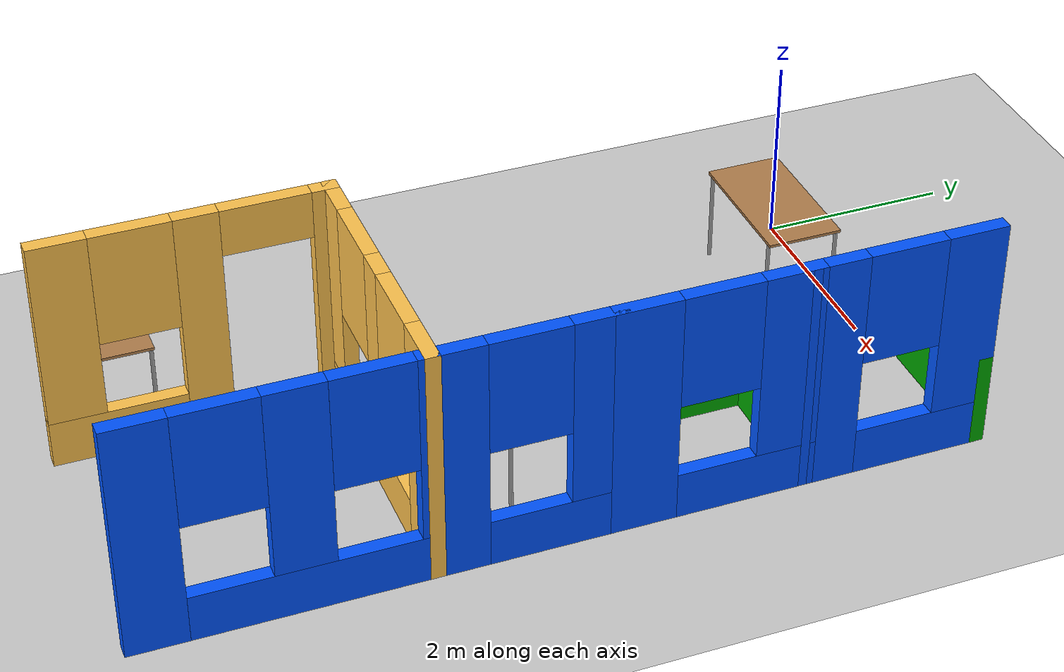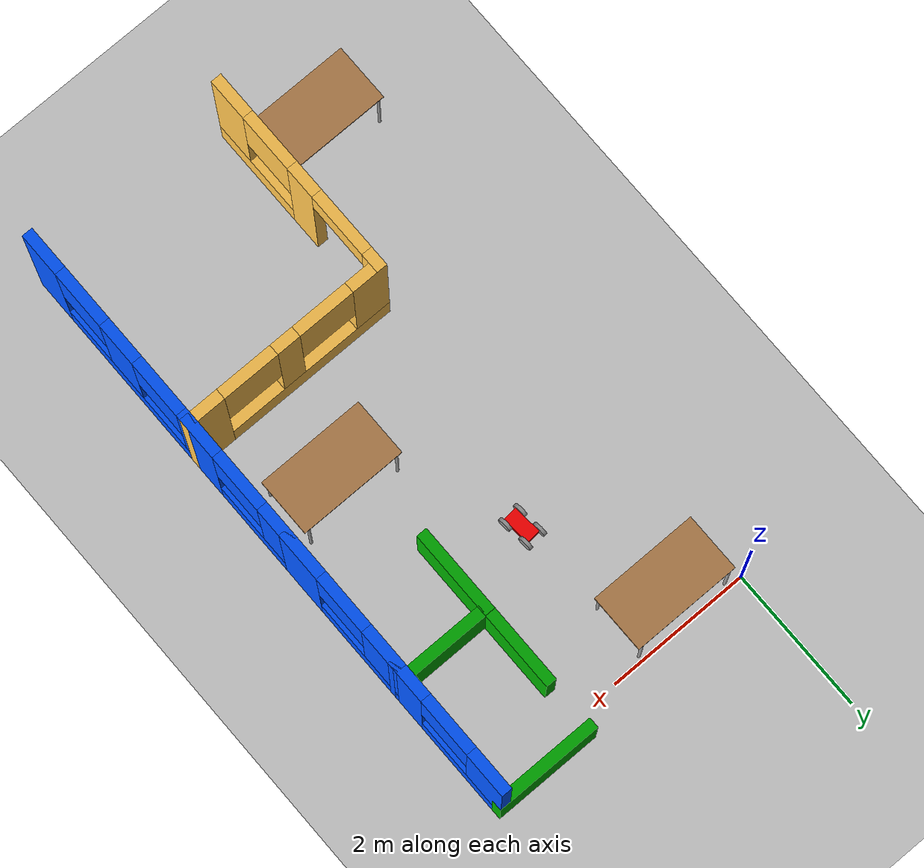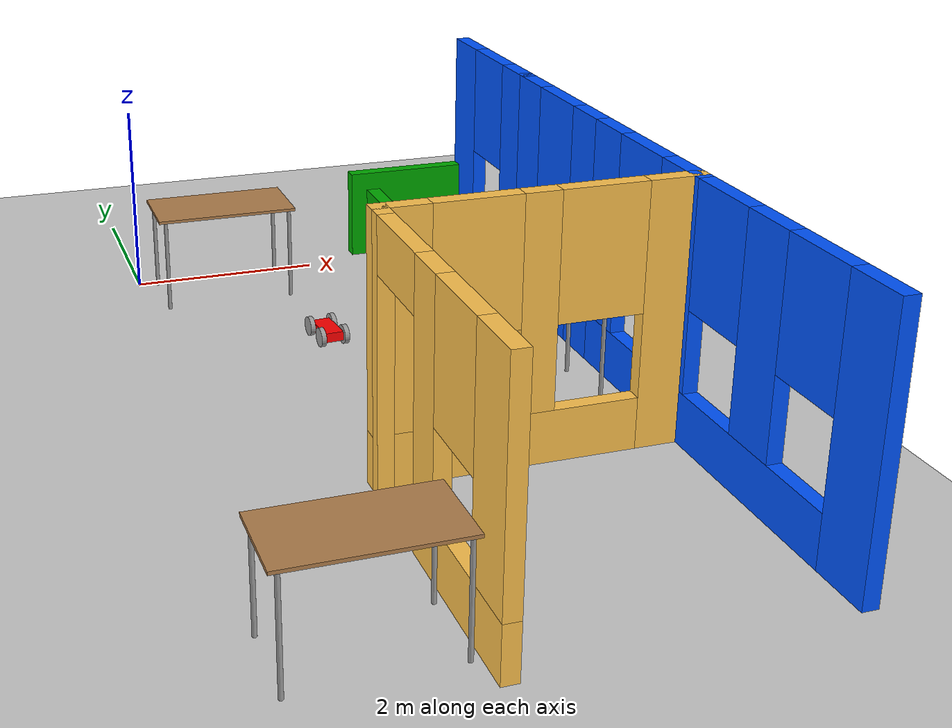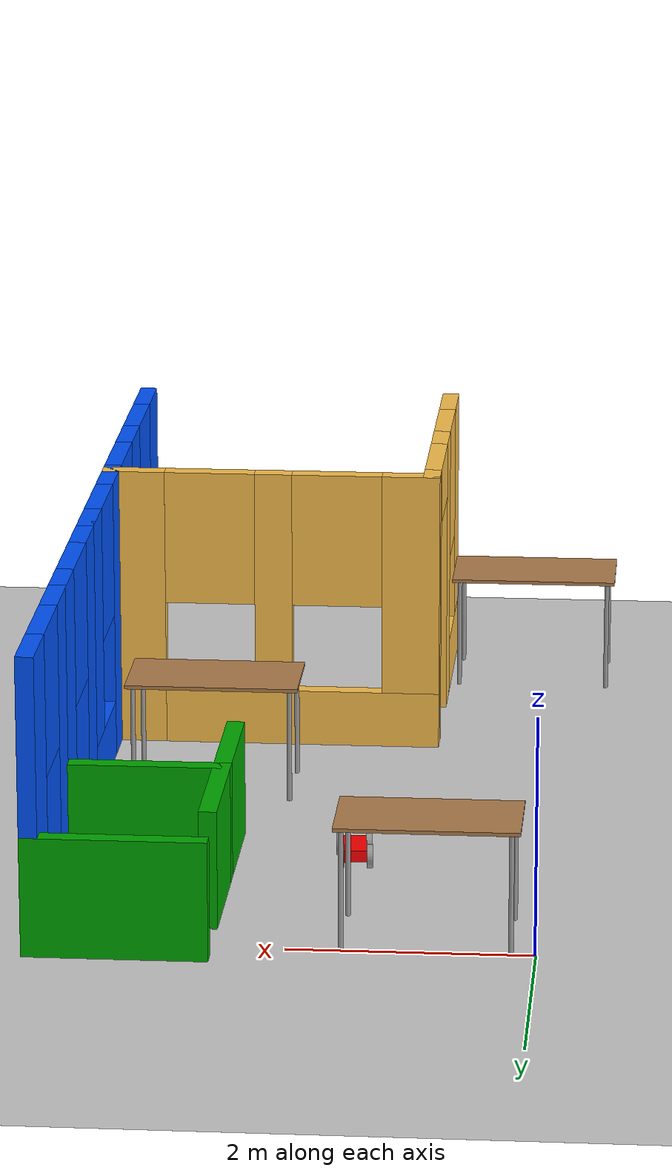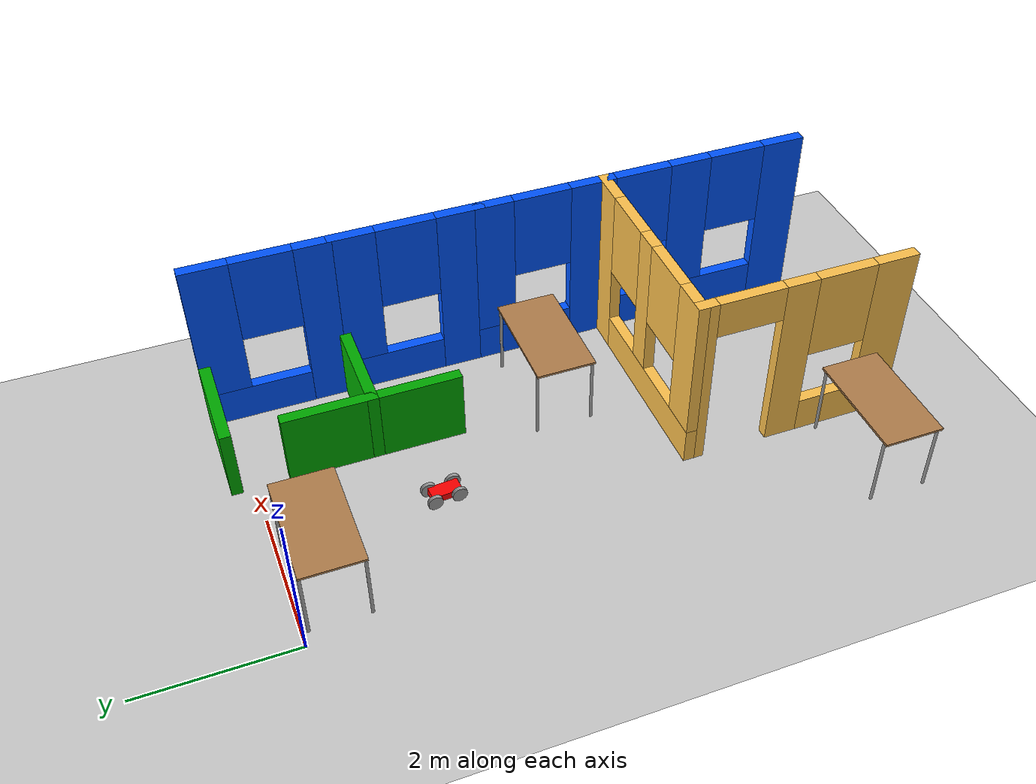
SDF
<sdf version="1.6">
 <world name="default">
  <model name="ground_plane">
   <static>1</static>
   <link name="link">
    <collision name="collision">
     <geometry><plane><normal>0 0 1</normal><size>100 100</size></plane></geometry>
     <surface><friction><ode><mu>100</mu><mu2>50</mu2></ode></friction></surface>
    </collision>
    <visual name="visual">
     <cast_shadows>0</cast_shadows>
     <geometry><plane><normal>0 0 1</normal><size>100 100</size></plane></geometry>
     <material>
      <script><uri>file://media/materials/scripts/gazebo.material</uri><name>Gazebo/Grey</name></script>
     </material>
    </visual>
   </link>
  </model>
  <model name="AMG">
   <pose>-3.41412 2.5474 0 0 -0 0</pose>
   <link name="Wall_10">
    <collision name="Wall_10_Collision">
     <geometry><box><size>1.5 0.15 1</size></box></geometry>
     <pose>0 0 0.5 0 -0 0</pose>
    </collision>
    <visual name="Wall_10_Visual">
     <pose>0 0 0.5 0 -0 0</pose>
     <geometry><box><size>1.5 0.15 1</size></box></geometry>
     <material>
      <script><uri>file://media/materials/scripts/gazebo.material</uri><name>Gazebo/Grey</name></script>
      <ambient>0 0.666667 0 1</ambient>
     </material>
     <meta><layer>0</layer></meta>
    </visual>
    <pose>6.75014 -4.14841 0 0 -0 3.14159</pose>
   </link>
   <link name="Wall_2">
    <pose>7.42485 -9.27379 0 0 -0 1.5708</pose>
    <visual name="Wall_2_Visual_0">
     <pose>-1.19989 0 1.25 0 -0 0</pose>
     <geometry><box><size>0.600224 0.15 2.5</size></box></geometry>
     <material>
      <script><uri>file://media/materials/scripts/gazebo.material</uri><name>Gazebo/Grey</name></script>
      <ambient>0 0.333333 1 1</ambient>
     </material>
     <meta><layer>0</layer></meta>
    </visual>
    <collision name="Wall_2_Collision_0">
     <geometry><box><size>0.600224 0.15 2.5</size></box></geometry>
     <pose>-1.19989 0 1.25 0 -0 0</pose>
    </collision>
    <visual name="Wall_2_Visual_1">
     <pose>0.300112 0 0.25 0 -0 0</pose>
     <geometry><box><size>2.39978 0.15 0.5</size></box></geometry>
     <material>
      <script><uri>file://media/materials/scripts/gazebo.material</uri><name>Gazebo/Grey</name></script>
      <ambient>0 0.333333 1 1</ambient>
     </material>
     <meta><layer>0</layer></meta>
    </visual>
    <collision name="Wall_2_Collision_1">
     <geometry><box><size>2.39978 0.15 0.5</size></box></geometry>
     <pose>0.300112 0 0.25 0 -0 0</pose>
    </collision>
    <visual name="Wall_2_Visual_2">
     <pose>0.194142 0 1.5 0 -0 0</pose>
     <geometry><box><size>0.587836 0.15 2</size></box></geometry>
     <material>
      <script><uri>file://media/materials/scripts/gazebo.material</uri><name>Gazebo/Grey</name></script>
      <ambient>0 0.333333 1 1</ambient>
     </material>
     <meta><layer>0</layer></meta>
    </visual>
    <collision name="Wall_2_Collision_2">
     <geometry><box><size>0.587836 0.15 2</size></box></geometry>
     <pose>0.194142 0 1.5 0 -0 0</pose>
    </collision>
    <visual name="Wall_2_Visual_3">
     <pose>1.39403 0 1.5 0 -0 0</pose>
     <geometry><box><size>0.211939 0.15 2</size></box></geometry>
     <material>
      <script><uri>file://media/materials/scripts/gazebo.material</uri><name>Gazebo/Grey</name></script>
      <ambient>0 0.333333 1 1</ambient>
     </material>
     <meta><layer>0</layer></meta>
    </visual>
    <collision name="Wall_2_Collision_3">
     <geometry><box><size>0.211939 0.15 2</size></box></geometry>
     <pose>1.39403 0 1.5 0 -0 0</pose>
    </collision>
    <visual name="Wall_2_Visual_4">
     <pose>-0.499776 0 1.9 0 -0 0</pose>
     <geometry><box><size>0.8 0.15 1.2</size></box></geometry>
     <material>
      <script><uri>file://media/materials/scripts/gazebo.material</uri><name>Gazebo/Grey</name></script>
      <ambient>0 0.333333 1 1</ambient>
     </material>
     <meta><layer>0</layer></meta>
    </visual>
    <collision name="Wall_2_Collision_4">
     <geometry><box><size>0.8 0.15 1.2</size></box></geometry>
     <pose>-0.499776 0 1.9 0 -0 0</pose>
    </collision>
    <visual name="Wall_2_Visual_5">
     <pose>0.888061 0 1.9 0 -0 0</pose>
     <geometry><box><size>0.8 0.15 1.2</size></box></geometry>
     <material>
      <script><uri>file://media/materials/scripts/gazebo.material</uri><name>Gazebo/Grey</name></script>
      <ambient>0 0.333333 1 1</ambient>
     </material>
     <meta><layer>0</layer></meta>
    </visual>
    <collision name="Wall_2_Collision_5">
     <geometry><box><size>0.8 0.15 1.2</size></box></geometry>
     <pose>0.888061 0 1.9 0 -0 0</pose>
    </collision>
   </link>
   <link name="Wall_3">
    <pose>5.99986 -7.84879 0 0 -0 3.14159</pose>
    <visual name="Wall_3_Visual_0">
     <pose>-1.22302 0 1.25 0 -0 0</pose>
     <geometry><box><size>0.553963 0.15 2.5</size></box></geometry>
     <material>
      <script><uri>file://media/materials/scripts/gazebo.material</uri><name>Gazebo/Grey</name></script>
      <ambient>1 0.764706 0.305882 1</ambient>
     </material>
     <meta><layer>0</layer></meta>
    </visual>
    <collision name="Wall_3_Collision_0">
     <geometry><box><size>0.553963 0.15 2.5</size></box></geometry>
     <pose>-1.22302 0 1.25 0 -0 0</pose>
    </collision>
    <visual name="Wall_3_Visual_1">
     <pose>0.276982 0 0.25 0 -0 0</pose>
     <geometry><box><size>2.44604 0.15 0.5</size></box></geometry>
     <material>
      <script><uri>file://media/materials/scripts/gazebo.material</uri><name>Gazebo/Grey</name></script>
      <ambient>1 0.764706 0.305882 1</ambient>
     </material>
     <meta><layer>0</layer></meta>
    </visual>
    <collision name="Wall_3_Collision_1">
     <geometry><box><size>2.44604 0.15 0.5</size></box></geometry>
     <pose>0.276982 0 0.25 0 -0 0</pose>
    </collision>
    <visual name="Wall_3_Visual_2">
     <pose>0.020663 0 1.5 0 -0 0</pose>
     <geometry><box><size>0.3334 0.15 2</size></box></geometry>
     <material>
      <script><uri>file://media/materials/scripts/gazebo.material</uri><name>Gazebo/Grey</name></script>
      <ambient>1 0.764706 0.305882 1</ambient>
     </material>
     <meta><layer>0</layer></meta>
    </visual>
    <collision name="Wall_3_Collision_2">
     <geometry><box><size>0.3334 0.15 2</size></box></geometry>
     <pose>0.020663 0 1.5 0 -0 0</pose>
    </collision>
    <visual name="Wall_3_Visual_3">
     <pose>1.24368 0 1.5 0 -0 0</pose>
     <geometry><box><size>0.512637 0.15 2</size></box></geometry>
     <material>
      <script><uri>file://media/materials/scripts/gazebo.material</uri><name>Gazebo/Grey</name></script>
      <ambient>1 0.764706 0.305882 1</ambient>
     </material>
     <meta><layer>0</layer></meta>
    </visual>
    <collision name="Wall_3_Collision_3">
     <geometry><box><size>0.512637 0.15 2</size></box></geometry>
     <pose>1.24368 0 1.5 0 -0 0</pose>
    </collision>
    <visual name="Wall_3_Visual_4">
     <pose>-0.546037 0 1.9 0 -0 0</pose>
     <geometry><box><size>0.8 0.15 1.2</size></box></geometry>
     <material>
      <script><uri>file://media/materials/scripts/gazebo.material</uri><name>Gazebo/Grey</name></script>
      <ambient>1 0.764706 0.305882 1</ambient>
     </material>
     <meta><layer>0</layer></meta>
    </visual>
    <collision name="Wall_3_Collision_4">
     <geometry><box><size>0.8 0.15 1.2</size></box></geometry>
     <pose>-0.546037 0 1.9 0 -0 0</pose>
    </collision>
    <visual name="Wall_3_Visual_5">
     <pose>0.587363 0 1.9 0 -0 0</pose>
     <geometry><box><size>0.8 0.15 1.2</size></box></geometry>
     <material>
      <script><uri>file://media/materials/scripts/gazebo.material</uri><name>Gazebo/Grey</name></script>
      <ambient>1 0.764706 0.305882 1</ambient>
     </material>
     <meta><layer>0</layer></meta>
    </visual>
    <collision name="Wall_3_Collision_5">
     <geometry><box><size>0.8 0.15 1.2</size></box></geometry>
     <pose>0.587363 0 1.9 0 -0 0</pose>
    </collision>
   </link>
   <link name="Wall_36">
    <pose>7.42514 -3.22341 0 0 -0 1.5708</pose>
    <visual name="Wall_36_Visual_0">
     <pose>-0.710083 0 1.25 0 -0 0</pose>
     <geometry><box><size>0.579834 0.15 2.5</size></box></geometry>
     <material>
      <script><uri>file://media/materials/scripts/gazebo.material</uri><name>Gazebo/Grey</name></script>
      <ambient>0 0.333333 1 1</ambient>
     </material>
     <meta><layer>0</layer></meta>
    </visual>
    <collision name="Wall_36_Collision_0">
     <geometry><box><size>0.579834 0.15 2.5</size></box></geometry>
     <pose>-0.710083 0 1.25 0 -0 0</pose>
    </collision>
    <visual name="Wall_36_Visual_1">
     <pose>0.289917 0 0.25 0 -0 0</pose>
     <geometry><box><size>1.42017 0.15 0.5</size></box></geometry>
     <material>
      <script><uri>file://media/materials/scripts/gazebo.material</uri><name>Gazebo/Grey</name></script>
      <ambient>0 0.333333 1 1</ambient>
     </material>
     <meta><layer>0</layer></meta>
    </visual>
    <collision name="Wall_36_Collision_1">
     <geometry><box><size>1.42017 0.15 0.5</size></box></geometry>
     <pose>0.289917 0 0.25 0 -0 0</pose>
    </collision>
    <visual name="Wall_36_Visual_2">
     <pose>0.689917 0 1.5 0 -0 0</pose>
     <geometry><box><size>0.620166 0.15 2</size></box></geometry>
     <material>
      <script><uri>file://media/materials/scripts/gazebo.material</uri><name>Gazebo/Grey</name></script>
      <ambient>0 0.333333 1 1</ambient>
     </material>
     <meta><layer>0</layer></meta>
    </visual>
    <collision name="Wall_36_Collision_2">
     <geometry><box><size>0.620166 0.15 2</size></box></geometry>
     <pose>0.689917 0 1.5 0 -0 0</pose>
    </collision>
    <visual name="Wall_36_Visual_3">
     <pose>-0.020166 0 1.9 0 -0 0</pose>
     <geometry><box><size>0.8 0.15 1.2</size></box></geometry>
     <material>
      <script><uri>file://media/materials/scripts/gazebo.material</uri><name>Gazebo/Grey</name></script>
      <ambient>0 0.333333 1 1</ambient>
     </material>
     <meta><layer>0</layer></meta>
    </visual>
    <collision name="Wall_36_Collision_3">
     <geometry><box><size>0.8 0.15 1.2</size></box></geometry>
     <pose>-0.020166 0 1.9 0 -0 0</pose>
    </collision>
   </link>
   <link name="Wall_37">
    <collision name="Wall_37_Collision">
     <geometry><box><size>1.5 0.15 1</size></box></geometry>
     <pose>0 0 0.5 0 -0 0</pose>
    </collision>
    <visual name="Wall_37_Visual">
     <pose>0 0 0.5 0 -0 0</pose>
     <geometry><box><size>1.5 0.15 1</size></box></geometry>
     <material>
      <script><uri>file://media/materials/scripts/gazebo.material</uri><name>Gazebo/Grey</name></script>
      <ambient>0 0.666667 0 1</ambient>
     </material>
     <meta><layer>0</layer></meta>
    </visual>
    <pose>6.75014 -2.2984 0 0 -0 3.14159</pose>
   </link>
   <link name="Wall_39">
    <collision name="Wall_39_Collision">
     <geometry><box><size>1.25 0.15 1</size></box></geometry>
     <pose>0 0 0.5 0 -0 0</pose>
    </collision>
    <visual name="Wall_39_Visual">
     <pose>0 0 0.5 0 -0 0</pose>
     <geometry><box><size>1.25 0.15 1</size></box></geometry>
     <material>
      <script><uri>file://media/materials/scripts/gazebo.material</uri><name>Gazebo/Grey</name></script>
      <ambient>0 0.666667 0 1</ambient>
     </material>
     <meta><layer>0</layer></meta>
    </visual>
    <pose>6.07514 -3.59841 0 0 -0 1.5708</pose>
   </link>
   <link name="Wall_4">
    <pose>4.57486 -9.27379 0 0 0 -1.5708</pose>
    <visual name="Wall_4_Visual_0">
     <pose>-1.3612 0 1.25 0 -0 0</pose>
     <geometry><box><size>0.277592 0.15 2.5</size></box></geometry>
     <material>
      <script><uri>file://media/materials/scripts/gazebo.material</uri><name>Gazebo/Grey</name></script>
      <ambient>1 0.764706 0.305882 1</ambient>
     </material>
     <meta><layer>0</layer></meta>
    </visual>
    <collision name="Wall_4_Collision_0">
     <geometry><box><size>0.277592 0.15 2.5</size></box></geometry>
     <pose>-1.3612 0 1.25 0 -0 0</pose>
    </collision>
    <visual name="Wall_4_Visual_1">
     <pose>-0.099751 0 1.25 0 -0 0</pose>
     <geometry><box><size>0.445314 0.15 2.5</size></box></geometry>
     <material>
      <script><uri>file://media/materials/scripts/gazebo.material</uri><name>Gazebo/Grey</name></script>
      <ambient>1 0.764706 0.305882 1</ambient>
     </material>
     <meta><layer>0</layer></meta>
    </visual>
    <collision name="Wall_4_Collision_1">
     <geometry><box><size>0.445314 0.15 2.5</size></box></geometry>
     <pose>-0.099751 0 1.25 0 -0 0</pose>
    </collision>
    <visual name="Wall_4_Visual_2">
     <pose>0.811453 0 0.25 0 -0 0</pose>
     <geometry><box><size>1.37709 0.15 0.5</size></box></geometry>
     <material>
      <script><uri>file://media/materials/scripts/gazebo.material</uri><name>Gazebo/Grey</name></script>
      <ambient>1 0.764706 0.305882 1</ambient>
     </material>
     <meta><layer>0</layer></meta>
    </visual>
    <collision name="Wall_4_Collision_2">
     <geometry><box><size>1.37709 0.15 0.5</size></box></geometry>
     <pose>0.811453 0 0.25 0 -0 0</pose>
    </collision>
    <visual name="Wall_4_Visual_3">
     <pose>1.21145 0 1.5 0 -0 0</pose>
     <geometry><box><size>0.577094 0.15 2</size></box></geometry>
     <material>
      <script><uri>file://media/materials/scripts/gazebo.material</uri><name>Gazebo/Grey</name></script>
      <ambient>1 0.764706 0.305882 1</ambient>
     </material>
     <meta><layer>0</layer></meta>
    </visual>
    <collision name="Wall_4_Collision_3">
     <geometry><box><size>0.577094 0.15 2</size></box></geometry>
     <pose>1.21145 0 1.5 0 -0 0</pose>
    </collision>
    <visual name="Wall_4_Visual_4">
     <pose>0.522906 0 1.9 0 -0 0</pose>
     <geometry><box><size>0.8 0.15 1.2</size></box></geometry>
     <material>
      <script><uri>file://media/materials/scripts/gazebo.material</uri><name>Gazebo/Grey</name></script>
      <ambient>1 0.764706 0.305882 1</ambient>
     </material>
     <meta><layer>0</layer></meta>
    </visual>
    <collision name="Wall_4_Collision_4">
     <geometry><box><size>0.8 0.15 1.2</size></box></geometry>
     <pose>0.522906 0 1.9 0 -0 0</pose>
    </collision>
    <visual name="Wall_4_Visual_5">
     <pose>-0.772408 0 2.25 0 -0 0</pose>
     <geometry><box><size>0.9 0.15 0.5</size></box></geometry>
     <material>
      <script><uri>file://media/materials/scripts/gazebo.material</uri><name>Gazebo/Grey</name></script>
      <ambient>1 0.764706 0.305882 1</ambient>
     </material>
     <meta><layer>0</layer></meta>
    </visual>
    <collision name="Wall_4_Collision_5">
     <geometry><box><size>0.9 0.15 0.5</size></box></geometry>
     <pose>-0.772408 0 2.25 0 -0 0</pose>
    </collision>
   </link>
   <link name="Wall_43">
    <collision name="Wall_43_Collision">
     <geometry><box><size>1.25 0.15 1</size></box></geometry>
     <pose>0 0 0.5 0 -0 0</pose>
    </collision>
    <visual name="Wall_43_Visual">
     <pose>0 0 0.5 0 -0 0</pose>
     <geometry><box><size>1.25 0.15 1</size></box></geometry>
     <material>
      <script><uri>file://media/materials/scripts/gazebo.material</uri><name>Gazebo/Grey</name></script>
      <ambient>0 0.666667 0 1</ambient>
     </material>
     <meta><layer>0</layer></meta>
    </visual>
    <pose>6.07514 -4.69841 0 0 0 -1.5708</pose>
   </link>
   <link name="Wall_6">
    <pose>7.42485 -6.9637 0 0 -0 1.5708</pose>
    <visual name="Wall_6_Visual_0">
     <pose>-0.668909 0 1.25 0 -0 0</pose>
     <geometry><box><size>0.582382 0.15 2.5</size></box></geometry>
     <material>
      <script><uri>file://media/materials/scripts/gazebo.material</uri><name>Gazebo/Grey</name></script>
      <ambient>0 0.333333 1 1</ambient>
     </material>
     <meta><layer>0</layer></meta>
    </visual>
    <collision name="Wall_6_Collision_0">
     <geometry><box><size>0.582382 0.15 2.5</size></box></geometry>
     <pose>-0.668909 0 1.25 0 -0 0</pose>
    </collision>
    <visual name="Wall_6_Visual_1">
     <pose>0.291191 0 0.25 0 -0 0</pose>
     <geometry><box><size>1.33782 0.15 0.5</size></box></geometry>
     <material>
      <script><uri>file://media/materials/scripts/gazebo.material</uri><name>Gazebo/Grey</name></script>
      <ambient>0 0.333333 1 1</ambient>
     </material>
     <meta><layer>0</layer></meta>
    </visual>
    <collision name="Wall_6_Collision_1">
     <geometry><box><size>1.33782 0.15 0.5</size></box></geometry>
     <pose>0.291191 0 0.25 0 -0 0</pose>
    </collision>
    <visual name="Wall_6_Visual_2">
     <pose>0.691191 0 1.5 0 -0 0</pose>
     <geometry><box><size>0.537817 0.15 2</size></box></geometry>
     <material>
      <script><uri>file://media/materials/scripts/gazebo.material</uri><name>Gazebo/Grey</name></script>
      <ambient>0 0.333333 1 1</ambient>
     </material>
     <meta><layer>0</layer></meta>
    </visual>
    <collision name="Wall_6_Collision_2">
     <geometry><box><size>0.537817 0.15 2</size></box></geometry>
     <pose>0.691191 0 1.5 0 -0 0</pose>
    </collision>
    <visual name="Wall_6_Visual_3">
     <pose>0.022283 0 1.9 0 -0 0</pose>
     <geometry><box><size>0.8 0.15 1.2</size></box></geometry>
     <material>
      <script><uri>file://media/materials/scripts/gazebo.material</uri><name>Gazebo/Grey</name></script>
      <ambient>0 0.333333 1 1</ambient>
     </material>
     <meta><layer>0</layer></meta>
    </visual>
    <collision name="Wall_6_Collision_3">
     <geometry><box><size>0.8 0.15 1.2</size></box></geometry>
     <pose>0.022283 0 1.9 0 -0 0</pose>
    </collision>
   </link>
   <link name="Wall_9">
    <pose>7.425 -5.1135 0 0 -0 1.57065</pose>
    <visual name="Wall_9_Visual_0">
     <pose>-0.707665 0 1.25 0 -0 0</pose>
     <geometry><box><size>0.66486 0.15 2.5</size></box></geometry>
     <material>
      <script><uri>file://media/materials/scripts/gazebo.material</uri><name>Gazebo/Grey</name></script>
      <ambient>0 0.333333 1 1</ambient>
     </material>
     <meta><layer>0</layer></meta>
    </visual>
    <collision name="Wall_9_Collision_0">
     <geometry><box><size>0.66486 0.15 2.5</size></box></geometry>
     <pose>-0.707665 0 1.25 0 -0 0</pose>
    </collision>
    <visual name="Wall_9_Visual_1">
     <pose>0.33243 0 0.25 0 -0 0</pose>
     <geometry><box><size>1.41533 0.15 0.5</size></box></geometry>
     <material>
      <script><uri>file://media/materials/scripts/gazebo.material</uri><name>Gazebo/Grey</name></script>
      <ambient>0 0.333333 1 1</ambient>
     </material>
     <meta><layer>0</layer></meta>
    </visual>
    <collision name="Wall_9_Collision_1">
     <geometry><box><size>1.41533 0.15 0.5</size></box></geometry>
     <pose>0.33243 0 0.25 0 -0 0</pose>
    </collision>
    <visual name="Wall_9_Visual_2">
     <pose>0.73243 0 1.5 0 -0 0</pose>
     <geometry><box><size>0.61533 0.15 2</size></box></geometry>
     <material>
      <script><uri>file://media/materials/scripts/gazebo.material</uri><name>Gazebo/Grey</name></script>
      <ambient>0 0.333333 1 1</ambient>
     </material>
     <meta><layer>0</layer></meta>
    </visual>
    <collision name="Wall_9_Collision_2">
     <geometry><box><size>0.61533 0.15 2</size></box></geometry>
     <pose>0.73243 0 1.5 0 -0 0</pose>
    </collision>
    <visual name="Wall_9_Visual_3">
     <pose>0.024765 0 1.9 0 -0 0</pose>
     <geometry><box><size>0.8 0.15 1.2</size></box></geometry>
     <material>
      <script><uri>file://media/materials/scripts/gazebo.material</uri><name>Gazebo/Grey</name></script>
      <ambient>0 0.333333 1 1</ambient>
     </material>
     <meta><layer>0</layer></meta>
    </visual>
    <collision name="Wall_9_Collision_3">
     <geometry><box><size>0.8 0.15 1.2</size></box></geometry>
     <pose>0.024765 0 1.9 0 -0 0</pose>
    </collision>
   </link>
   <static>1</static>
  </model>
  <model name="table">
   <static>1</static>
   <link name="link">
    <collision name="surface">
     <pose>0 0 1 0 -0 0</pose>
     <geometry><box><size>1.5 0.8 0.03</size></box></geometry>
     <surface><friction><ode><mu>0.6</mu><mu2>0.6</mu2></ode></friction></surface>
    </collision>
    <visual name="visual1">
     <pose>0 0 1 0 -0 0</pose>
     <geometry><box><size>1.5 0.8 0.03</size></box></geometry>
     <material>
      <script><uri>file://media/materials/scripts/gazebo.material</uri><name>Gazebo/Wood</name></script>
     </material>
    </visual>
    <collision name="front_left_leg">
     <pose>0.68 0.38 0.5 0 -0 0</pose>
     <geometry><cylinder><radius>0.02</radius><length>1</length></cylinder></geometry>
    </collision>
    <visual name="front_left_leg">
     <pose>0.68 0.38 0.5 0 -0 0</pose>
     <geometry><cylinder><radius>0.02</radius><length>1</length></cylinder></geometry>
     <material>
      <script><uri>file://media/materials/scripts/gazebo.material</uri><name>Gazebo/Grey</name></script>
     </material>
    </visual>
    <collision name="front_right_leg">
     <pose>0.68 -0.38 0.5 0 -0 0</pose>
     <geometry><cylinder><radius>0.02</radius><length>1</length></cylinder></geometry>
    </collision>
    <visual name="front_right_leg">
     <pose>0.68 -0.38 0.5 0 -0 0</pose>
     <geometry><cylinder><radius>0.02</radius><length>1</length></cylinder></geometry>
     <material>
      <script><uri>file://media/materials/scripts/gazebo.material</uri><name>Gazebo/Grey</name></script>
     </material>
    </visual>
    <collision name="back_right_leg">
     <pose>-0.68 -0.38 0.5 0 -0 0</pose>
     <geometry><cylinder><radius>0.02</radius><length>1</length></cylinder></geometry>
    </collision>
    <visual name="back_right_leg">
     <pose>-0.68 -0.38 0.5 0 -0 0</pose>
     <geometry><cylinder><radius>0.02</radius><length>1</length></cylinder></geometry>
     <material>
      <script><uri>file://media/materials/scripts/gazebo.material</uri><name>Gazebo/Grey</name></script>
     </material>
    </visual>
    <collision name="back_left_leg">
     <pose>-0.68 0.38 0.5 0 -0 0</pose>
     <geometry><cylinder><radius>0.02</radius><length>1</length></cylinder></geometry>
    </collision>
    <visual name="back_left_leg">
     <pose>-0.68 0.38 0.5 0 -0 0</pose>
     <geometry><cylinder><radius>0.02</radius><length>1</length></cylinder></geometry>
     <material>
      <script><uri>file://media/materials/scripts/gazebo.material</uri><name>Gazebo/Grey</name></script>
     </material>
    </visual>
   </link>
   <pose>0.878227 -0.456786 0 0 -0 0</pose>
  </model>
  <model name="table_1_clone_1">
   <static>1</static>
   <link name="link">
    <collision name="surface">
     <pose>0 0 1 0 -0 0</pose>
     <geometry><box><size>1.5 0.8 0.03</size></box></geometry>
     <surface><friction><ode><mu>0.6</mu><mu2>0.6</mu2></ode></friction></surface>
    </collision>
    <visual name="visual1">
     <pose>0 0 1 0 -0 0</pose>
     <geometry><box><size>1.5 0.8 0.03</size></box></geometry>
     <material>
      <script><uri>file://media/materials/scripts/gazebo.material</uri><name>Gazebo/Wood</name></script>
     </material>
    </visual>
    <collision name="front_left_leg">
     <pose>0.68 0.38 0.5 0 -0 0</pose>
     <geometry><cylinder><radius>0.02</radius><length>1</length></cylinder></geometry>
    </collision>
    <visual name="front_left_leg">
     <pose>0.68 0.38 0.5 0 -0 0</pose>
     <geometry><cylinder><radius>0.02</radius><length>1</length></cylinder></geometry>
     <material>
      <script><uri>file://media/materials/scripts/gazebo.material</uri><name>Gazebo/Grey</name></script>
     </material>
    </visual>
    <collision name="front_right_leg">
     <pose>0.68 -0.38 0.5 0 -0 0</pose>
     <geometry><cylinder><radius>0.02</radius><length>1</length></cylinder></geometry>
    </collision>
    <visual name="front_right_leg">
     <pose>0.68 -0.38 0.5 0 -0 0</pose>
     <geometry><cylinder><radius>0.02</radius><length>1</length></cylinder></geometry>
     <material>
      <script><uri>file://media/materials/scripts/gazebo.material</uri><name>Gazebo/Grey</name></script>
     </material>
    </visual>
    <collision name="back_right_leg">
     <pose>-0.68 -0.38 0.5 0 -0 0</pose>
     <geometry><cylinder><radius>0.02</radius><length>1</length></cylinder></geometry>
    </collision>
    <visual name="back_right_leg">
     <pose>-0.68 -0.38 0.5 0 -0 0</pose>
     <geometry><cylinder><radius>0.02</radius><length>1</length></cylinder></geometry>
     <material>
      <script><uri>file://media/materials/scripts/gazebo.material</uri><name>Gazebo/Grey</name></script>
     </material>
    </visual>
    <collision name="back_left_leg">
     <pose>-0.68 0.38 0.5 0 -0 0</pose>
     <geometry><cylinder><radius>0.02</radius><length>1</length></cylinder></geometry>
    </collision>
    <visual name="back_left_leg">
     <pose>-0.68 0.38 0.5 0 -0 0</pose>
     <geometry><cylinder><radius>0.02</radius><length>1</length></cylinder></geometry>
     <material>
      <script><uri>file://media/materials/scripts/gazebo.material</uri><name>Gazebo/Grey</name></script>
     </material>
    </visual>
   </link>
   <pose>2.96724 -4.05197 0 0 -0 0</pose>
  </model>
  <model name="table_1_clone_13">
   <static>1</static>
   <link name="link">
    <collision name="surface">
     <pose>0 0 1 0 -0 0</pose>
     <geometry><box><size>1.5 0.8 0.03</size></box></geometry>
     <surface><friction><ode><mu>0.6</mu><mu2>0.6</mu2></ode></friction></surface>
    </collision>
    <visual name="visual1">
     <pose>0 0 1 0 -0 0</pose>
     <geometry><box><size>1.5 0.8 0.03</size></box></geometry>
     <material>
      <script><uri>file://media/materials/scripts/gazebo.material</uri><name>Gazebo/Wood</name></script>
     </material>
    </visual>
    <collision name="front_left_leg">
     <pose>0.68 0.38 0.5 0 -0 0</pose>
     <geometry><cylinder><radius>0.02</radius><length>1</length></cylinder></geometry>
    </collision>
    <visual name="front_left_leg">
     <pose>0.68 0.38 0.5 0 -0 0</pose>
     <geometry><cylinder><radius>0.02</radius><length>1</length></cylinder></geometry>
     <material>
      <script><uri>file://media/materials/scripts/gazebo.material</uri><name>Gazebo/Grey</name></script>
     </material>
    </visual>
    <collision name="front_right_leg">
     <pose>0.68 -0.38 0.5 0 -0 0</pose>
     <geometry><cylinder><radius>0.02</radius><length>1</length></cylinder></geometry>
    </collision>
    <visual name="front_right_leg">
     <pose>0.68 -0.38 0.5 0 -0 0</pose>
     <geometry><cylinder><radius>0.02</radius><length>1</length></cylinder></geometry>
     <material>
      <script><uri>file://media/materials/scripts/gazebo.material</uri><name>Gazebo/Grey</name></script>
     </material>
    </visual>
    <collision name="back_right_leg">
     <pose>-0.68 -0.38 0.5 0 -0 0</pose>
     <geometry><cylinder><radius>0.02</radius><length>1</length></cylinder></geometry>
    </collision>
    <visual name="back_right_leg">
     <pose>-0.68 -0.38 0.5 0 -0 0</pose>
     <geometry><cylinder><radius>0.02</radius><length>1</length></cylinder></geometry>
     <material>
      <script><uri>file://media/materials/scripts/gazebo.material</uri><name>Gazebo/Grey</name></script>
     </material>
    </visual>
    <collision name="back_left_leg">
     <pose>-0.68 0.38 0.5 0 -0 0</pose>
     <geometry><cylinder><radius>0.02</radius><length>1</length></cylinder></geometry>
    </collision>
    <visual name="back_left_leg">
     <pose>-0.68 0.38 0.5 0 -0 0</pose>
     <geometry><cylinder><radius>0.02</radius><length>1</length></cylinder></geometry>
     <material>
      <script><uri>file://media/materials/scripts/gazebo.material</uri><name>Gazebo/Grey</name></script>
     </material>
    </visual>
   </link>
   <pose>0.324555 -7.50702 0 0 -0 0</pose>
  </model>
  <model name="Car_clone">
   <link name="link_2">
    <pose>0.001366 -0.012518 1e-06 0 -0 0</pose>
    <inertial>
     <mass>1</mass>
     <inertia>
      <ixx>0.166667</ixx>
      <ixy>0</ixy>
      <ixz>0</ixz>
      <iyy>0.166667</iyy>
      <iyz>0</iyz>
      <izz>0.166667</izz>
     </inertia>
    </inertial>
    <visual name="visual">
     <geometry><box><size>0.2 0.4 0.1</size></box></geometry>
     <material>
      <lighting>1</lighting>
      <script><uri>file://media/materials/scripts/gazebo.material</uri><name>Gazebo/Grey</name></script>
      <shader type="pixel"><normal_map>__default__</normal_map></shader>
      <ambient>1 0 0 1</ambient>
      <diffuse>1 0 0 1</diffuse>
      <specular>0.01 0.01 0.01 1</specular>
      <emissive>0 0 0 1</emissive>
     </material>
    </visual>
    <collision name="collision">
     <geometry><box><size>0.2 0.4 0.1</size></box></geometry>
     <surface>
      <friction>
       <ode><mu>1</mu><mu2>1</mu2><fdir1>0 0 0</fdir1><slip1>0</slip1><slip2>0</slip2></ode>
       <torsional>
        <coefficient>1</coefficient>
        <patch_radius>0</patch_radius>
        <surface_radius>0</surface_radius>
        <use_patch_radius>1</use_patch_radius>
        <ode><slip>0</slip></ode>
       </torsional>
      </friction>
      <bounce><restitution_coefficient>0</restitution_coefficient><threshold>1e+06</threshold></bounce>
      <contact>
       <collide_without_contact>0</collide_without_contact>
       <collide_without_contact_bitmask>1</collide_without_contact_bitmask>
       <collide_bitmask>1</collide_bitmask>
       <ode>
        <soft_cfm>0</soft_cfm>
        <soft_erp>0.2</soft_erp>
        <kp>1e+13</kp>
        <kd>1</kd>
        <max_vel>0.01</max_vel>
        <min_depth>0</min_depth>
       </ode>
       <bullet>
        <split_impulse>1</split_impulse>
        <split_impulse_penetration_threshold>-0.01</split_impulse_penetration_threshold>
        <soft_cfm>0</soft_cfm>
        <soft_erp>0.2</soft_erp>
        <kp>1e+13</kp>
        <kd>1</kd>
       </bullet>
      </contact>
     </surface>
    </collision>
   </link>
   <link name="link_3">
    <pose>-0.121194 -0.15899 -2e-06 1.5707 0 1.5707</pose>
    <inertial>
     <mass>1</mass>
     <inertia><ixx>0.145833</ixx><ixy>0</ixy><ixz>0</ixz><iyy>0.145833</iyy><iyz>0</iyz><izz>0.125</izz></inertia>
    </inertial>
    <visual name="visual">
     <geometry><cylinder><radius>0.1</radius><length>0.05</length></cylinder></geometry>
     <material>
      <lighting>1</lighting>
      <script><uri>file://media/materials/scripts/gazebo.material</uri><name>Gazebo/Grey</name></script>
      <shader type="pixel"><normal_map>__default__</normal_map></shader>
      <ambient>0 0 0 1</ambient>
      <diffuse>0 0 0 1</diffuse>
      <specular>0.01 0.01 0.01 1</specular>
      <emissive>0 0 0 1</emissive>
     </material>
    </visual>
    <collision name="collision">
     <geometry><cylinder><radius>0.1</radius><length>0.05</length></cylinder></geometry>
     <surface>
      <friction>
       <ode><mu>1</mu><mu2>1</mu2><fdir1>0 0 0</fdir1><slip1>0</slip1><slip2>0</slip2></ode>
       <torsional>
        <coefficient>1</coefficient>
        <patch_radius>0</patch_radius>
        <surface_radius>0</surface_radius>
        <use_patch_radius>1</use_patch_radius>
        <ode><slip>0</slip></ode>
       </torsional>
      </friction>
      <bounce><restitution_coefficient>0</restitution_coefficient><threshold>1e+06</threshold></bounce>
      <contact>
       <collide_without_contact>0</collide_without_contact>
       <collide_without_contact_bitmask>1</collide_without_contact_bitmask>
       <collide_bitmask>1</collide_bitmask>
       <ode>
        <soft_cfm>0</soft_cfm>
        <soft_erp>0.2</soft_erp>
        <kp>1e+13</kp>
        <kd>1</kd>
        <max_vel>0.01</max_vel>
        <min_depth>0</min_depth>
       </ode>
       <bullet>
        <split_impulse>1</split_impulse>
        <split_impulse_penetration_threshold>-0.01</split_impulse_penetration_threshold>
        <soft_cfm>0</soft_cfm>
        <soft_erp>0.2</soft_erp>
        <kp>1e+13</kp>
        <kd>1</kd>
       </bullet>
      </contact>
     </surface>
    </collision>
   </link>
   <link name="link_3_clone">
    <pose>0.127787 -0.166069 1e-06 1.5707 0 1.5707</pose>
    <inertial>
     <mass>1</mass>
     <inertia><ixx>0.145833</ixx><ixy>0</ixy><ixz>0</ixz><iyy>0.145833</iyy><iyz>0</iyz><izz>0.125</izz></inertia>
    </inertial>
    <visual name="visual">
     <geometry><cylinder><radius>0.1</radius><length>0.05</length></cylinder></geometry>
     <material>
      <lighting>1</lighting>
      <script><uri>file://media/materials/scripts/gazebo.material</uri><name>Gazebo/Grey</name></script>
      <shader type="pixel"><normal_map>__default__</normal_map></shader>
      <ambient>0 0 0 1</ambient>
      <diffuse>0 0 0 1</diffuse>
      <specular>0.01 0.01 0.01 1</specular>
      <emissive>0 0 0 1</emissive>
     </material>
    </visual>
    <collision name="collision">
     <geometry><cylinder><radius>0.1</radius><length>0.05</length></cylinder></geometry>
     <surface>
      <friction>
       <ode><mu>1</mu><mu2>1</mu2><fdir1>0 0 0</fdir1><slip1>0</slip1><slip2>0</slip2></ode>
       <torsional>
        <coefficient>1</coefficient>
        <patch_radius>0</patch_radius>
        <surface_radius>0</surface_radius>
        <use_patch_radius>1</use_patch_radius>
        <ode><slip>0</slip></ode>
       </torsional>
      </friction>
      <bounce><restitution_coefficient>0</restitution_coefficient><threshold>1e+06</threshold></bounce>
      <contact>
       <collide_without_contact>0</collide_without_contact>
       <collide_without_contact_bitmask>1</collide_without_contact_bitmask>
       <collide_bitmask>1</collide_bitmask>
       <ode>
        <soft_cfm>0</soft_cfm>
        <soft_erp>0.2</soft_erp>
        <kp>1e+13</kp>
        <kd>1</kd>
        <max_vel>0.01</max_vel>
        <min_depth>0</min_depth>
       </ode>
       <bullet>
        <split_impulse>1</split_impulse>
        <split_impulse_penetration_threshold>-0.01</split_impulse_penetration_threshold>
        <soft_cfm>0</soft_cfm>
        <soft_erp>0.2</soft_erp>
        <kp>1e+13</kp>
        <kd>1</kd>
       </bullet>
      </contact>
     </surface>
    </collision>
   </link>
   <link name="link_3_clone_0">
    <pose>-0.123634 0.167574 1e-06 1.5707 0 1.5707</pose>
    <inertial>
     <mass>1</mass>
     <inertia><ixx>0.145833</ixx><ixy>0</ixy><ixz>0</ixz><iyy>0.145833</iyy><iyz>0</iyz><izz>0.125</izz></inertia>
    </inertial>
    <visual name="visual">
     <geometry><cylinder><radius>0.1</radius><length>0.05</length></cylinder></geometry>
     <material>
      <lighting>1</lighting>
      <script><uri>file://media/materials/scripts/gazebo.material</uri><name>Gazebo/Grey</name></script>
      <shader type="pixel"><normal_map>__default__</normal_map></shader>
      <ambient>0 0 0 1</ambient>
      <diffuse>0 0 0 1</diffuse>
      <specular>0.01 0.01 0.01 1</specular>
      <emissive>0 0 0 1</emissive>
     </material>
    </visual>
    <collision name="collision">
     <geometry><cylinder><radius>0.1</radius><length>0.05</length></cylinder></geometry>
     <surface>
      <friction>
       <ode><mu>1</mu><mu2>1</mu2><fdir1>0 0 0</fdir1><slip1>0</slip1><slip2>0</slip2></ode>
       <torsional>
        <coefficient>1</coefficient>
        <patch_radius>0</patch_radius>
        <surface_radius>0</surface_radius>
        <use_patch_radius>1</use_patch_radius>
        <ode><slip>0</slip></ode>
       </torsional>
      </friction>
      <bounce><restitution_coefficient>0</restitution_coefficient><threshold>1e+06</threshold></bounce>
      <contact>
       <collide_without_contact>0</collide_without_contact>
       <collide_without_contact_bitmask>1</collide_without_contact_bitmask>
       <collide_bitmask>1</collide_bitmask>
       <ode>
        <soft_cfm>0</soft_cfm>
        <soft_erp>0.2</soft_erp>
        <kp>1e+13</kp>
        <kd>1</kd>
        <max_vel>0.01</max_vel>
        <min_depth>0</min_depth>
       </ode>
       <bullet>
        <split_impulse>1</split_impulse>
        <split_impulse_penetration_threshold>-0.01</split_impulse_penetration_threshold>
        <soft_cfm>0</soft_cfm>
        <soft_erp>0.2</soft_erp>
        <kp>1e+13</kp>
        <kd>1</kd>
       </bullet>
      </contact>
     </surface>
    </collision>
   </link>
   <link name="link_3_clone_1">
    <pose>0.116366 0.169087 1e-06 1.5707 0 1.5707</pose>
    <inertial>
     <mass>1</mass>
     <inertia><ixx>0.145833</ixx><ixy>0</ixy><ixz>0</ixz><iyy>0.145833</iyy><iyz>0</iyz><izz>0.125</izz></inertia>
    </inertial>
    <visual name="visual">
     <geometry><cylinder><radius>0.1</radius><length>0.05</length></cylinder></geometry>
     <material>
      <lighting>1</lighting>
      <script><uri>file://media/materials/scripts/gazebo.material</uri><name>Gazebo/Grey</name></script>
      <shader type="pixel"><normal_map>__default__</normal_map></shader>
      <ambient>0 0 0 1</ambient>
      <diffuse>0 0 0 1</diffuse>
      <specular>0.01 0.01 0.01 1</specular>
      <emissive>0 0 0 1</emissive>
     </material>
    </visual>
    <collision name="collision">
     <geometry><cylinder><radius>0.1</radius><length>0.05</length></cylinder></geometry>
     <surface>
      <friction>
       <ode><mu>1</mu><mu2>1</mu2><fdir1>0 0 0</fdir1><slip1>0</slip1><slip2>0</slip2></ode>
       <torsional>
        <coefficient>1</coefficient>
        <patch_radius>0</patch_radius>
        <surface_radius>0</surface_radius>
        <use_patch_radius>1</use_patch_radius>
        <ode><slip>0</slip></ode>
       </torsional>
      </friction>
      <bounce><restitution_coefficient>0</restitution_coefficient><threshold>1e+06</threshold></bounce>
      <contact>
       <collide_without_contact>0</collide_without_contact>
       <collide_without_contact_bitmask>1</collide_without_contact_bitmask>
       <collide_bitmask>1</collide_bitmask>
       <ode>
        <soft_cfm>0</soft_cfm>
        <soft_erp>0.2</soft_erp>
        <kp>1e+13</kp>
        <kd>1</kd>
        <max_vel>0.01</max_vel>
        <min_depth>0</min_depth>
       </ode>
       <bullet>
        <split_impulse>1</split_impulse>
        <split_impulse_penetration_threshold>-0.01</split_impulse_penetration_threshold>
        <soft_cfm>0</soft_cfm>
        <soft_erp>0.2</soft_erp>
        <kp>1e+13</kp>
        <kd>1</kd>
       </bullet>
      </contact>
     </surface>
    </collision>
   </link>
   <joint name="link_2_JOINT_0" type="revolute">
    <parent>link_2</parent>
    <child>link_3</child>
    <axis>
     <xyz>0 0 1</xyz>
     <use_parent_model_frame>0</use_parent_model_frame>
     <limit>
      <lower>-1.79769e+308</lower>
      <upper>1.79769e+308</upper>
      <effort>-1</effort>
      <velocity>-1</velocity>
     </limit>
     <dynamics>
      <spring_reference>0</spring_reference>
      <spring_stiffness>0</spring_stiffness>
      <damping>0</damping>
      <friction>0</friction>
     </dynamics>
    </axis>
    <physics>
     <ode><limit><cfm>0</cfm><erp>0.2</erp></limit><suspension><cfm>0</cfm><erp>0.2</erp></suspension></ode>
    </physics>
   </joint>
   <joint name="link_2_JOINT_1" type="revolute">
    <parent>link_2</parent>
    <child>link_3_clone</child>
    <axis>
     <xyz>0 0 1</xyz>
     <use_parent_model_frame>0</use_parent_model_frame>
     <limit>
      <lower>-1.79769e+308</lower>
      <upper>1.79769e+308</upper>
      <effort>-1</effort>
      <velocity>-1</velocity>
     </limit>
     <dynamics>
      <spring_reference>0</spring_reference>
      <spring_stiffness>0</spring_stiffness>
      <damping>0</damping>
      <friction>0</friction>
     </dynamics>
    </axis>
    <physics>
     <ode><limit><cfm>0</cfm><erp>0.2</erp></limit><suspension><cfm>0</cfm><erp>0.2</erp></suspension></ode>
    </physics>
   </joint>
   <joint name="link_2_JOINT_2" type="revolute">
    <parent>link_2</parent>
    <child>link_3_clone_0</child>
    <axis>
     <xyz>0 0 1</xyz>
     <use_parent_model_frame>0</use_parent_model_frame>
     <limit>
      <lower>-1.79769e+308</lower>
      <upper>1.79769e+308</upper>
      <effort>-1</effort>
      <velocity>-1</velocity>
     </limit>
     <dynamics>
      <spring_reference>0</spring_reference>
      <spring_stiffness>0</spring_stiffness>
      <damping>0</damping>
      <friction>0</friction>
     </dynamics>
    </axis>
    <physics>
     <ode><limit><cfm>0</cfm><erp>0.2</erp></limit><suspension><cfm>0</cfm><erp>0.2</erp></suspension></ode>
    </physics>
   </joint>
   <joint name="link_2_JOINT_3" type="revolute">
    <parent>link_2</parent>
    <child>link_3_clone_1</child>
    <axis>
     <xyz>0 0 1</xyz>
     <use_parent_model_frame>0</use_parent_model_frame>
     <limit>
      <lower>-1.79769e+308</lower>
      <upper>1.79769e+308</upper>
      <effort>-1</effort>
      <velocity>-1</velocity>
     </limit>
     <dynamics>
      <spring_reference>0</spring_reference>
      <spring_stiffness>0</spring_stiffness>
      <damping>0</damping>
      <friction>0</friction>
     </dynamics>
    </axis>
    <physics>
     <ode><limit><cfm>0</cfm><erp>0.2</erp></limit><suspension><cfm>0</cfm><erp>0.2</erp></suspension></ode>
    </physics>
   </joint>
   <static>0</static>
   <pose>1.60278 -2.1606 0.100003 -2e-06 1e-05 0.07857</pose>
  </model>
 </world>
</sdf>
